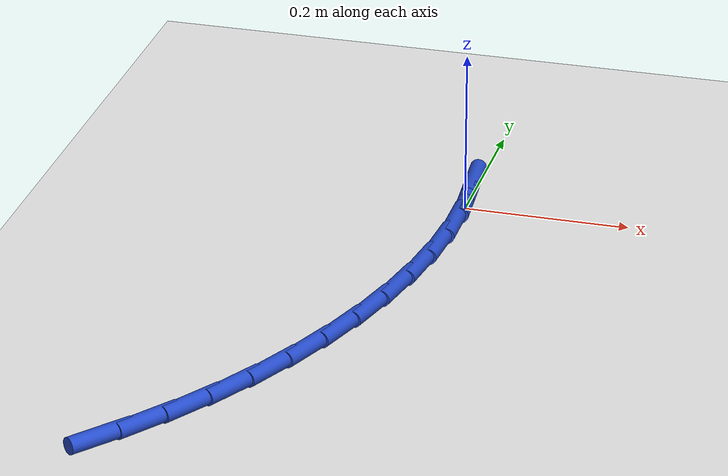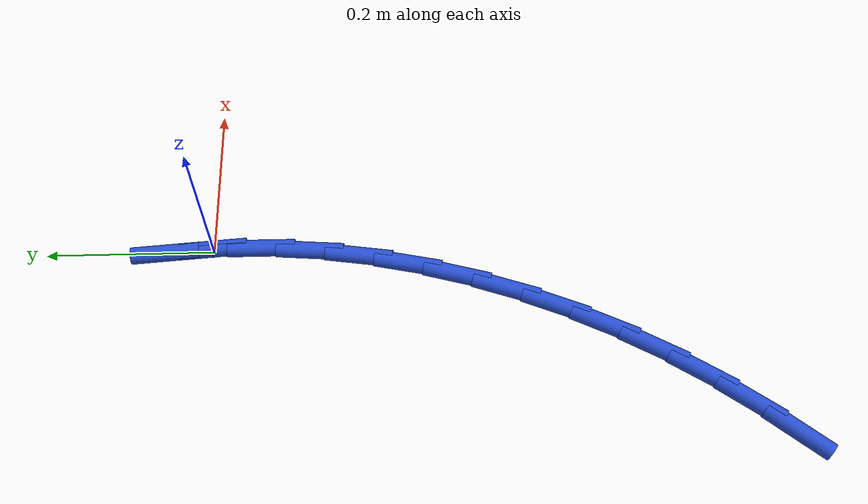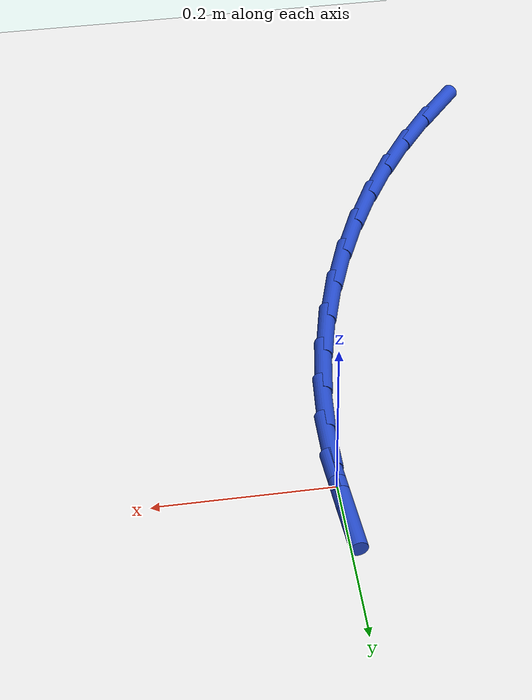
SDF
<sdf version="1.6">
 <world name="default">
  <model name="ground_plane">
   <static>1</static>
   <link name="link">
    <collision name="collision">
     <geometry><plane><normal>0 0 1</normal><size>100 100</size></plane></geometry>
     <surface><friction><ode><mu>100</mu><mu2>50</mu2></ode></friction></surface>
    </collision>
    <visual name="visual">
     <cast_shadows>0</cast_shadows>
     <geometry><plane><normal>0 0 1</normal><size>100 100</size></plane></geometry>
     <material>
      <script><uri>file://media/materials/scripts/gazebo.material</uri><name>Gazebo/WhiteGlow</name></script>
     </material>
    </visual>
   </link>
  </model>
  <model name="line">
   <link name="link_0">
    <pose>-5.551115123125783e-17 -2.7755575615628914e-17 0.01 0 1.57 -1.495999172820697</pose>
    <collision name="collision">
     <geometry><cylinder><radius>0.01</radius><length>0.08</length></cylinder></geometry>
    </collision>
    <visual name="visual">
     <material>
      <script><name>Gazebo/Blue</name><uri>file://media/materials/scripts/gazebo.material</uri></script>
     </material>
     <geometry><cylinder><radius>0.01</radius><length>0.08</length></cylinder></geometry>
    </visual>
   </link>
   <link name="link_108">
    <pose>-0.2418843480862777 -0.6487708389025848 0.01 0 1.57 0.8808780166564185</pose>
    <collision name="collision">
     <geometry><cylinder><radius>0.01</radius><length>0.08</length></cylinder></geometry>
    </collision>
    <visual name="visual">
     <material>
      <script><name>Gazebo/Blue</name><uri>file://media/materials/scripts/gazebo.material</uri></script>
     </material>
     <geometry><cylinder><radius>0.01</radius><length>0.08</length></cylinder></geometry>
    </visual>
   </link>
   <link name="link_109">
    <pose>-0.20445787916849575 -0.6034163499460651 0.01 0 1.57 0.9389935538360251</pose>
    <collision name="collision">
     <geometry><cylinder><radius>0.01</radius><length>0.08</length></cylinder></geometry>
    </collision>
    <visual name="visual">
     <material>
      <script><name>Gazebo/Blue</name><uri>file://media/materials/scripts/gazebo.material</uri></script>
     </material>
     <geometry><cylinder><radius>0.01</radius><length>0.08</length></cylinder></geometry>
    </visual>
   </link>
   <link name="link_110">
    <pose>-0.1696368643427833 -0.5558388260112768 0.01 0 1.57 0.9988079348737448</pose>
    <collision name="collision">
     <geometry><cylinder><radius>0.01</radius><length>0.08</length></cylinder></geometry>
    </collision>
    <visual name="visual">
     <material>
      <script><name>Gazebo/Blue</name><uri>file://media/materials/scripts/gazebo.material</uri></script>
     </material>
     <geometry><cylinder><radius>0.01</radius><length>0.08</length></cylinder></geometry>
    </visual>
   </link>
   <link name="link_111">
    <pose>-0.13758648581013666 -0.5060539522899259 0.01 0 1.57 1.0598691737513044</pose>
    <collision name="collision">
     <geometry><cylinder><radius>0.01</radius><length>0.08</length></cylinder></geometry>
    </collision>
    <visual name="visual">
     <material>
      <script><name>Gazebo/Blue</name><uri>file://media/materials/scripts/gazebo.material</uri></script>
     </material>
     <geometry><cylinder><radius>0.01</radius><length>0.08</length></cylinder></geometry>
    </visual>
   </link>
   <link name="link_112">
    <pose>-0.10847088333558552 -0.4541152823947225 0.01 0 1.57 1.1204401248263491</pose>
    <collision name="collision">
     <geometry><cylinder><radius>0.01</radius><length>0.08</length></cylinder></geometry>
    </collision>
    <visual name="visual">
     <material>
      <script><name>Gazebo/Blue</name><uri>file://media/materials/scripts/gazebo.material</uri></script>
     </material>
     <geometry><cylinder><radius>0.01</radius><length>0.08</length></cylinder></geometry>
    </visual>
   </link>
   <link name="link_113">
    <pose>-0.0824482265727593 -0.4002932453142417 0.01 0 1.57 1.1805100903957166</pose>
    <collision name="collision">
     <geometry><cylinder><radius>0.01</radius><length>0.08</length></cylinder></geometry>
    </collision>
    <visual name="visual">
     <material>
      <script><name>Gazebo/Blue</name><uri>file://media/materials/scripts/gazebo.material</uri></script>
     </material>
     <geometry><cylinder><radius>0.01</radius><length>0.08</length></cylinder></geometry>
    </visual>
   </link>
   <link name="link_114">
    <pose>-0.059674563537902243 -0.3449353424523207 0.01 0 1.57 1.2407939081882648</pose>
    <collision name="collision">
     <geometry><cylinder><radius>0.01</radius><length>0.08</length></cylinder></geometry>
    </collision>
    <visual name="visual">
     <material>
      <script><name>Gazebo/Blue</name><uri>file://media/materials/scripts/gazebo.material</uri></script>
     </material>
     <geometry><cylinder><radius>0.01</radius><length>0.08</length></cylinder></geometry>
    </visual>
   </link>
   <link name="link_115">
    <pose>-0.040305939702154944 -0.28838916766841294 0.01 0 1.57 1.3020064488260648</pose>
    <collision name="collision">
     <geometry><cylinder><radius>0.01</radius><length>0.08</length></cylinder></geometry>
    </collision>
    <visual name="visual">
     <material>
      <script><name>Gazebo/Blue</name><uri>file://media/materials/scripts/gazebo.material</uri></script>
     </material>
     <geometry><cylinder><radius>0.01</radius><length>0.08</length></cylinder></geometry>
    </visual>
   </link>
   <link name="link_116">
    <pose>-0.02449840053665879 -0.2310023148219748 0.01 0 1.57 1.364869655242357</pose>
    <collision name="collision">
     <geometry><cylinder><radius>0.01</radius><length>0.08</length></cylinder></geometry>
    </collision>
    <visual name="visual">
     <material>
      <script><name>Gazebo/Blue</name><uri>file://media/materials/scripts/gazebo.material</uri></script>
     </material>
     <geometry><cylinder><radius>0.01</radius><length>0.08</length></cylinder></geometry>
    </visual>
   </link>
   <link name="link_117">
    <pose>-0.012407991512554353 -0.17312237777245992 0.01 0 1.57 1.4301174166861266</pose>
    <collision name="collision">
     <geometry><cylinder><radius>0.01</radius><length>0.08</length></cylinder></geometry>
    </collision>
    <visual name="visual">
     <material>
      <script><name>Gazebo/Blue</name><uri>file://media/materials/scripts/gazebo.material</uri></script>
     </material>
     <geometry><cylinder><radius>0.01</radius><length>0.08</length></cylinder></geometry>
    </visual>
   </link>
   <link name="link_118">
    <pose>-0.004190758100982508 -0.11509695037932288 0.01 0 1.57 1.498494842116216</pose>
    <collision name="collision">
     <geometry><cylinder><radius>0.01</radius><length>0.08</length></cylinder></geometry>
    </collision>
    <visual name="visual">
     <material>
      <script><name>Gazebo/Blue</name><uri>file://media/materials/scripts/gazebo.material</uri></script>
     </material>
     <geometry><cylinder><radius>0.01</radius><length>0.08</length></cylinder></geometry>
    </visual>
   </link>
   <link name="link_119">
    <pose>-2.745773084070896e-06 -0.05727362650201749 0.01 0 1.57 1.5707483854779303</pose>
    <collision name="collision">
     <geometry><cylinder><radius>0.01</radius><length>0.08</length></cylinder></geometry>
    </collision>
    <visual name="visual">
     <material>
      <script><name>Gazebo/Blue</name><uri>file://media/materials/scripts/gazebo.material</uri></script>
     </material>
     <geometry><cylinder><radius>0.01</radius><length>0.08</length></cylinder></geometry>
    </visual>
   </link>
   <link name="link_120">
    <pose>-2.7755575615628914e-17 9.71445146547012e-17 0.01 0 1.57 -1.493990489553511</pose>
    <collision name="collision">
     <geometry><cylinder><radius>0.01</radius><length>0.08</length></cylinder></geometry>
    </collision>
    <visual name="visual">
     <material>
      <script><name>Gazebo/Blue</name><uri>file://media/materials/scripts/gazebo.material</uri></script>
     </material>
     <geometry><cylinder><radius>0.01</radius><length>0.08</length></cylinder></geometry>
    </visual>
   </link>
   <link name="link_121">
    <pose>-0.0043385662528711635 0.05637633526727616 0.01 0 1.57 -1.4939904895535117</pose>
    <collision name="collision">
     <geometry><cylinder><radius>0.01</radius><length>0.08</length></cylinder></geometry>
    </collision>
    <visual name="visual">
     <material>
      <script><name>Gazebo/Blue</name><uri>file://media/materials/scripts/gazebo.material</uri></script>
     </material>
     <geometry><cylinder><radius>0.01</radius><length>0.08</length></cylinder></geometry>
    </visual>
   </link>
  </model>
 </world>
</sdf>
